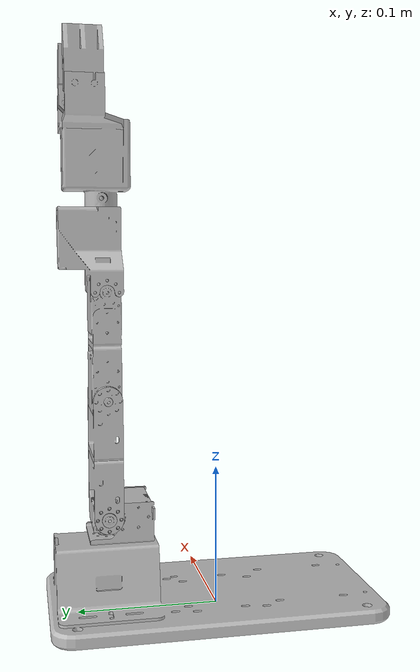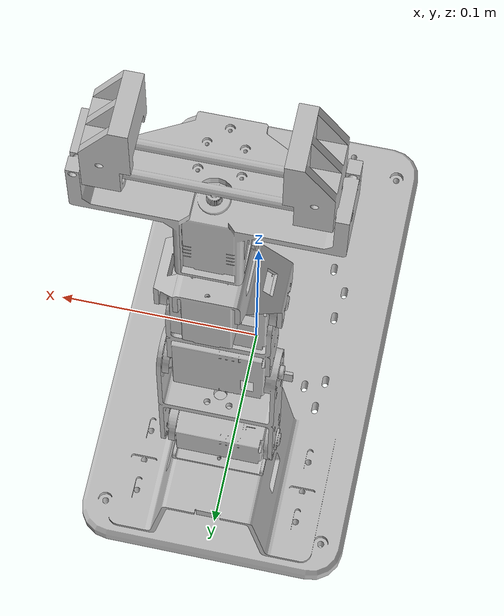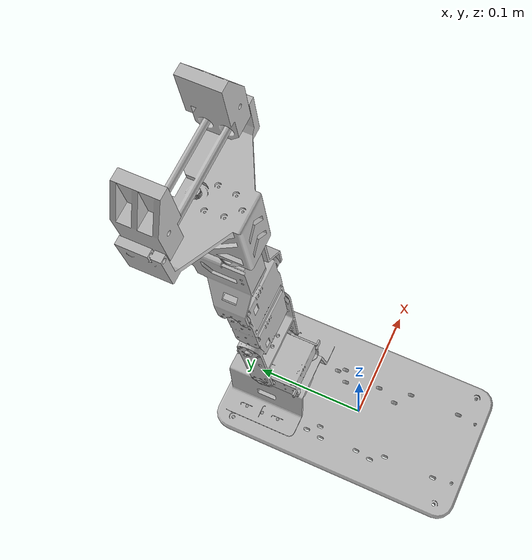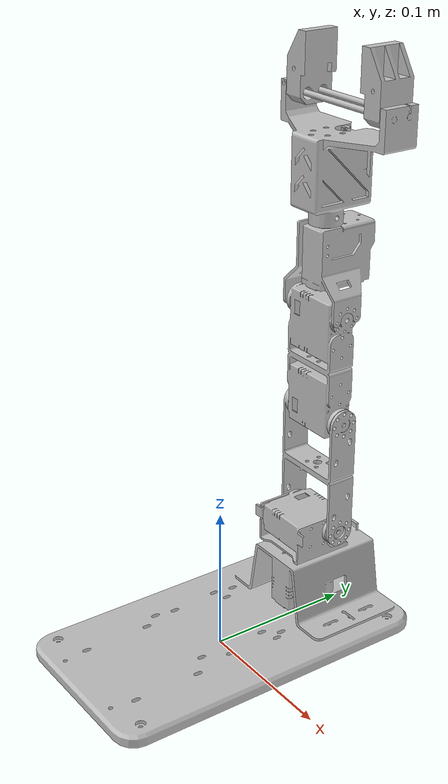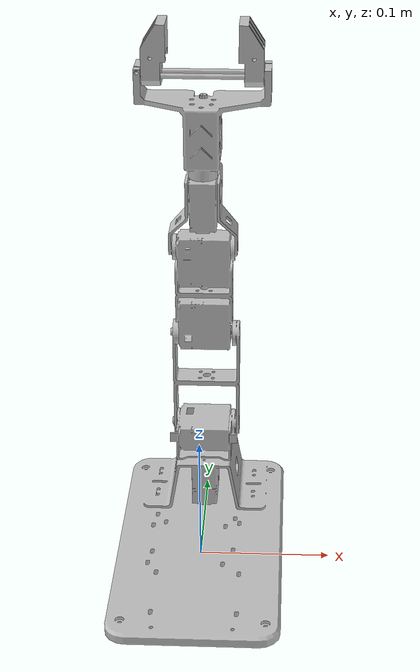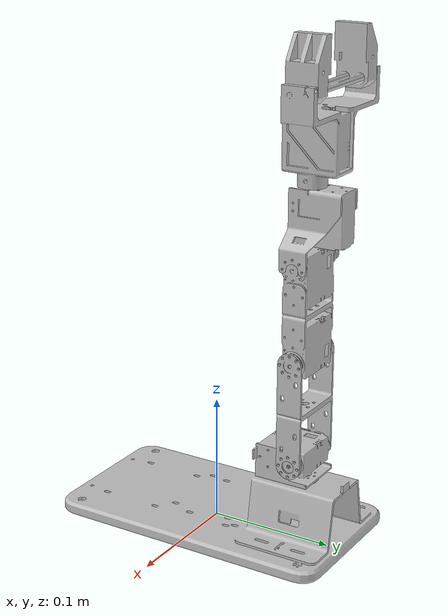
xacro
<?xml version="1.0"?>
<robot xmlns:xacro="http://www.ros.org/wiki/xacro" name="robo_description">
    <xacro:arg name="initial_positions_file" default="initial_positions.yaml" />

    <!-- Import robo_description urdf file -->
    <xacro:include filename="$(find robo_description)/urdf/robo_description.urdf" />

    <!-- Import control_xacro -->
    <xacro:include filename="robo_description.ros2_control.xacro" />

    <xacro:robo_description_ros2_control name="FakeSystem" initial_positions_file="$(arg initial_positions_file)"/>

</robot>

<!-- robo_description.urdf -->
<robot
  name="robo_description">
  <link
    name="base_link">
    <visual>
      <origin
        xyz="0 0 0"
        rpy="0 0 0" />
      <geometry>
        <mesh
          filename="package://robo_description/meshes/visual/base_link.STL" />
      </geometry>
      <material
        name="">
        <color
          rgba="0.75294 0.75294 0.75294 1" />
      </material>
    </visual>
    <collision>
      <origin
        xyz="0 0 0"
        rpy="0 0 0" />
      <geometry>
        <mesh
          filename="package://robo_description/meshes/visual/base_link.STL" />
      </geometry>
    </collision>
  </link>
  <link
    name="robot_link1">
    <visual>
      <origin
        xyz="0 0 0"
        rpy="0 0 0" />
      <geometry>
        <mesh
          filename="package://robo_description/meshes/visual/robot_link1.STL" />
      </geometry>
      <material
        name="">
        <color
          rgba="0.75294 0.75294 0.75294 1" />
      </material>
    </visual>
    <collision>
      <origin
        xyz="0 0 0"
        rpy="0 0 0" />
      <geometry>
        <mesh
          filename="package://robo_description/meshes/visual/robot_link1.STL" />
      </geometry>
    </collision>
  </link>
  <joint
    name="robot_joint1"
    type="revolute">
    <origin
      xyz="-4.1073E-05 0.080098 0.057"
      rpy="0 0 0" />
    <parent
      link="base_link" />
    <child
      link="robot_link1" />
    <axis
      xyz="0 0 -1" />
    <limit
      lower="-2"
      upper="2"
      effort="30"
      velocity="50" />
  </joint>
  <link
    name="robot_link2">
    <visual>
      <origin
        xyz="0 0 0"
        rpy="0 0 0" />
      <geometry>
        <mesh
          filename="package://robo_description/meshes/visual/robot_link2.STL" />
      </geometry>
      <material
        name="">
        <color
          rgba="0.75294 0.75294 0.75294 1" />
      </material>
    </visual>
    <collision>
      <origin
        xyz="0 0 0"
        rpy="0 0 0" />
      <geometry>
        <mesh
          filename="package://robo_description/meshes/visual/robot_link2.STL" />
      </geometry>
    </collision>
  </link>
  <joint
    name="robot_joint2"
    type="revolute">
    <origin
      xyz="-0.0258 -0.00081639 0.015894"
      rpy="-1.5708 0 1.5708" />
    <parent
      link="robot_link1" />
    <child
      link="robot_link2" />
    <axis
      xyz="0 0 1" />
    <limit
      lower="-0.9"
      upper="1.5"
      effort="30"
      velocity="50.000001" />
  </joint>
  <link
    name="robot_link3">
    <visual>
      <origin
        xyz="0 0 0"
        rpy="0 0 0" />
      <geometry>
        <mesh
          filename="package://robo_description/meshes/visual/robot_link3.STL" />
      </geometry>
      <material
        name="">
        <color
          rgba="0.75294 0.75294 0.75294 1" />
      </material>
    </visual>
    <collision>
      <origin
        xyz="0 0 0"
        rpy="0 0 0" />
      <geometry>
        <mesh
          filename="package://robo_description/meshes/visual/robot_link3.STL" />
      </geometry>
    </collision>
  </link>
  <joint
    name="robot_joint3"
    type="revolute">
    <origin
      xyz="0 -0.081399 0.001"
      rpy="0 0 0" />
    <parent
      link="robot_link2" />
    <child
      link="robot_link3" />
    <axis
      xyz="0 0 1" />
    <limit
      lower="-2.1"
      upper="2.1"
      effort="30"
      velocity="50.000001" />
  </joint>
  <link
    name="robot_link4">
    <visual>
      <origin
        xyz="0 0 0"
        rpy="0 0 0" />
      <geometry>
        <mesh
          filename="package://robo_description/meshes/visual/robot_link4.STL" />
      </geometry>
      <material
        name="">
        <color
          rgba="0.75294 0.75294 0.75294 1" />
      </material>
    </visual>
    <collision>
      <origin
        xyz="0 0 0"
        rpy="0 0 0" />
      <geometry>
        <mesh
          filename="package://robo_description/meshes/visual/robot_link4.STL" />
      </geometry>
    </collision>
  </link>
  <joint
    name="robot_joint4"
    type="revolute">
    <origin
      xyz="0 -0.07335 0"
      rpy="0 0 0" />
    <parent
      link="robot_link3" />
    <child
      link="robot_link4" />
    <axis
      xyz="0 0 1" />
    <limit
      lower="-2"
      upper="1.5"
      effort="30"
      velocity="50.000001" />
  </joint>
  <link
    name="hand_link">
    <visual>
      <origin
        xyz="0 0 0"
        rpy="0 0 0" />
      <geometry>
        <mesh
          filename="package://robo_description/meshes/visual/hand_link.STL" />
      </geometry>
      <material
        name="">
        <color
          rgba="0.75294 0.75294 0.75294 1" />
      </material>
    </visual>
    <collision>
      <origin
        xyz="0 0 0"
        rpy="0 0 0" />
      <geometry>
        <mesh
          filename="package://robo_description/meshes/visual/hand_link.STL" />
      </geometry>
    </collision>
  </link>
  <joint
    name="hand_joint"
    type="revolute">
    <origin
      xyz="0.001325 -0.16273 -0.02655"
      rpy="1.5708 1.5708 0" />
    <parent
      link="robot_link4" />
    <child
      link="hand_link" />
    <axis
      xyz="0 0 -1" />
    <limit
      lower="-3.1"
      upper="3.1"
      effort="30"
      velocity="50" />
  </joint>
  <link
    name="left_link">
    <visual>
      <origin
        xyz="0 0 0"
        rpy="0 0 0" />
      <geometry>
        <mesh
          filename="package://robo_description/meshes/visual/left_link.STL" />
      </geometry>
      <material
        name="">
        <color
          rgba="0.75294 0.75294 0.75294 1" />
      </material>
    </visual>
    <collision>
      <origin
        xyz="0 0 0"
        rpy="0 0 0" />
      <geometry>
        <mesh
          filename="package://robo_description/meshes/visual/left_link.STL" />
      </geometry>
    </collision>
  </link>
  <joint
    name="grippers_joint"
    type="prismatic">
    <origin
      xyz="0.026464 0.013587 -0.013325"
      rpy="-1.5708 0 -1.5708" />
    <parent
      link="hand_link" />
    <child
      link="left_link" />
    <axis
      xyz="0 0 1" />
    <limit
      lower="-0.027"
      upper="0"
      effort="30"
      velocity="50" />
  </joint>
  <link
    name="right_link">
    <visual>
      <origin
        xyz="0 0 0"
        rpy="0 0 0" />
      <geometry>
        <mesh
          filename="package://robo_description/meshes/visual/right_link.STL" />
      </geometry>
      <material
        name="">
        <color
          rgba="0.75294 0.75294 0.75294 1" />
      </material>
    </visual>
    <collision>
      <origin
        xyz="0 0 0"
        rpy="0 0 0" />
      <geometry>
        <mesh
          filename="package://robo_description/meshes/visual/right_link.STL" />
      </geometry>
    </collision>
  </link>
  <joint
    name="right_joint"
    type="prismatic">
    <origin
      xyz="-0.026464 0.013587 -0.013325"
      rpy="-1.5708 0 1.5708" />
    <parent
      link="hand_link" />
    <child
      link="right_link" />
    <axis
      xyz="0 0 1" />
    <limit
      lower="-3.1"
      upper="3.1"
      effort="30"
      velocity="50.000001" />
    <mimic joint="grippers_joint" />
  </joint>
</robot>
